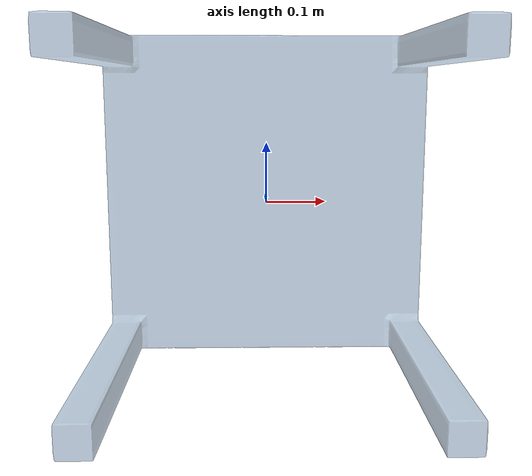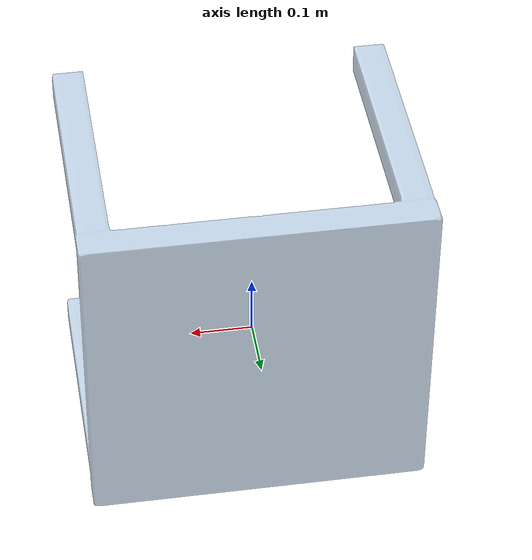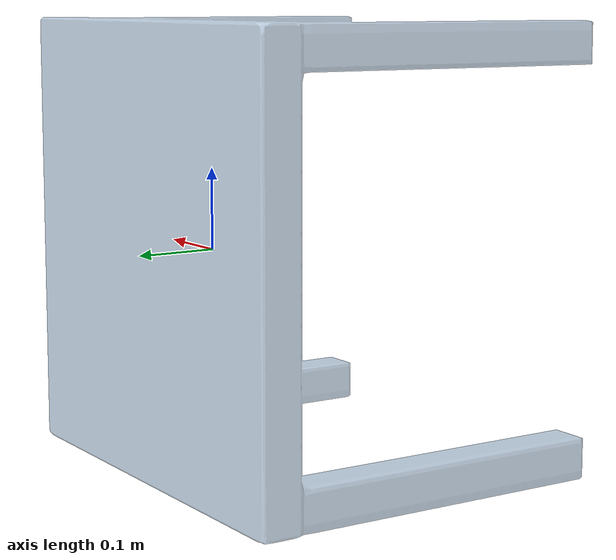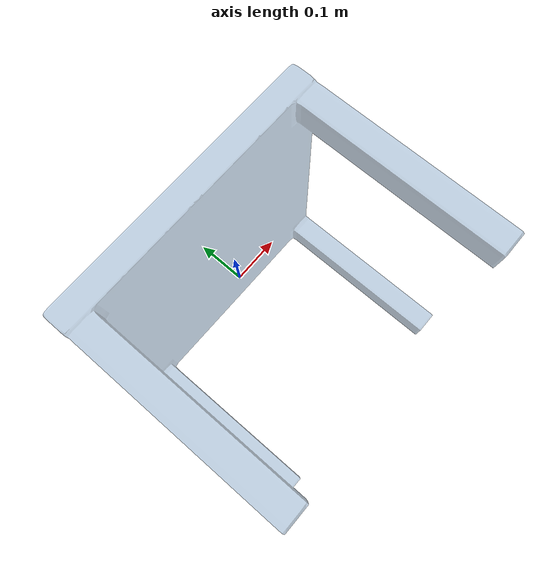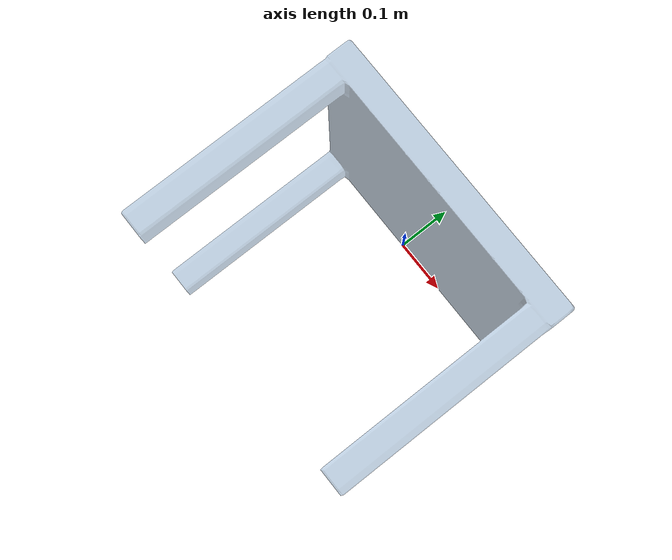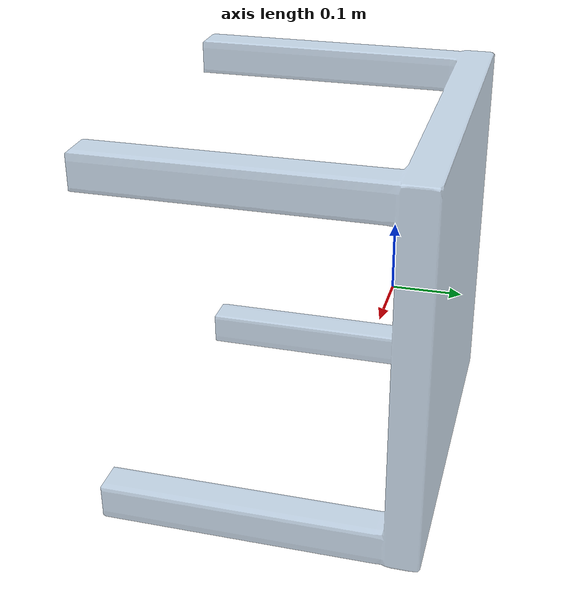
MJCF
<mujoco model="largetable">
    <compiler meshdir="./"/>

    <default>
        <geom friction="0.9 0.5 0.5" rgba="0.7 0.8 0.9 0.7"/>
        <joint damping="0.5"/>
    </default>

    <asset>
        <mesh name="largetable_mesh" file="largetable.obj" scale="1 1 1"/>
    </asset>

    <worldbody>
        <body name="largetable_link">
            <inertial pos="0 0 0" mass="0.1" diaginertia="0.002 0.002 0.002"/>
            <geom name="largetable" type="mesh" mesh="largetable_mesh"
                  pos="0 0 0" quat="1 0 0 0"
                  rgba="0.7 0.8 0.9 0.7"
                  friction="0.9 0.5 0.5"
                  solref="0.02 1"
                  solimp="0.9 0.95 0.001"/>
        </body>
    </worldbody>
</mujoco>
